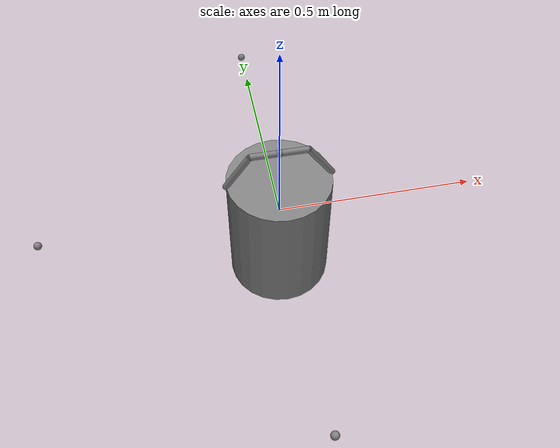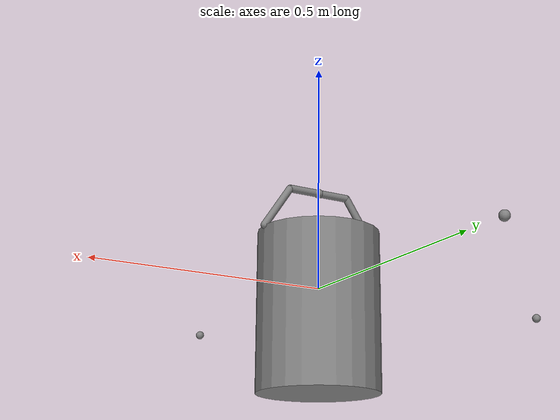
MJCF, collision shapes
<mujoco model="bucket">
  <include file="bucket_defs.xml"/>

  <worldbody>
    <body name="bucket" pos="0 0 0">
      <joint name="bucket_joint" type="free"/>

      <!-- Solid-cylinder inertia for m=5 kg, r=0.13, h=0.34; COM at the body's geometric center (z=-0.05). -->
      <inertial pos="0 0 -0.05" mass="115.0" diaginertia="0.069 0.069 0.042"/>

      <!-- Visual: full mesh, rotated so its Y axis (up) points to Z. -->
      <geom name="bucket_visual" class="visual_bucket" type="mesh" mesh="bucket_mesh"
            quat="0.7071 0.7071 0 0" material="bucket_material"/>

      <!-- Collision: bucket body (single convex cylinder; no decomposition needed for the body). -->
      <geom name="bucket_body_collision" class="collision_bucket" type="cylinder"
            pos="0 0 -0.05" size="0.13 0.17"/>

      <!-- Collision: rigid bail handle, 3 thin capsules. The handle lies in the X-Z plane (thin in Y). -->
      <geom name="handle_top"   class="collision_bucket" type="capsule" size="0.008"
            fromto="-0.07 0 0.21   0.07 0 0.21"/>   <!-- top bar (grasp target), runs along X -->
      <geom name="handle_left"  class="collision_bucket" type="capsule" size="0.008"
            fromto="-0.13 0 0.12  -0.07 0 0.21"/>   <!-- left riser, rim -> apex -->
      <geom name="handle_right" class="collision_bucket" type="capsule" size="0.008"
            fromto="0.13 0 0.12   0.07 0 0.21"/>    <!-- right riser, rim -> apex -->

      <!-- REQUIRED: shared spot_components/sensor.xml references site_object. -->
      <site name="site_object" pos="0 0 0" size="0.01"/>
      <site name="trace_bucket" pos="0 0 0" size="0.01"/>

      <!-- Grasp target: center of the handle top bar. -->
      <site name="site_grasp_handle" pos="0 0 0.21" size="0.01"/>
      <site name="trace_grasp_handle" pos="0 0 0.21" size="0.01"/>

      <!-- Approach sites around the bucket for the torso-proximity reward. -->
      <site name="site_approach_left"  pos="0 -0.6 0" size="0.01"/>
      <site name="site_approach_mid"   pos="-0.6 0 0" size="0.01"/>
      <site name="site_approach_right" pos="0 0.6 0" size="0.01"/>
    </body>
  </worldbody>
</mujoco>

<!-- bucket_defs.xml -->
<mujoco model="bucket_defs">
  <!-- Asset + style declarations for the bucket-with-handle object. -->
  <default>
    <default class="visual_bucket">
      <geom type="mesh" contype="0" conaffinity="0" group="2"/>
    </default>
    <default class="collision_bucket">
      <geom priority="6" group="3" friction="0.6 0.3 0.2"/>
    </default>
  </default>

  <asset>
    <material name="bucket_material" rgba="0.2 0.5 0.7 1"/>
    <!-- Imported mesh is ~2.0 units tall (along local Y = up-axis). scale=0.22 -> ~0.44 m total height
         (bucket body ~0.34 m tall / ~0.28 m dia, bail handle arcs ~0.10 m above the rim). -->
    <mesh name="bucket_mesh" file="../../../meshes/bucket/model.obj" scale="0.22 0.22 0.22"/>
  </asset>
</mujoco>
